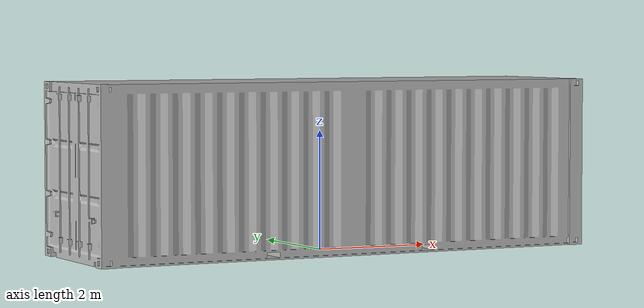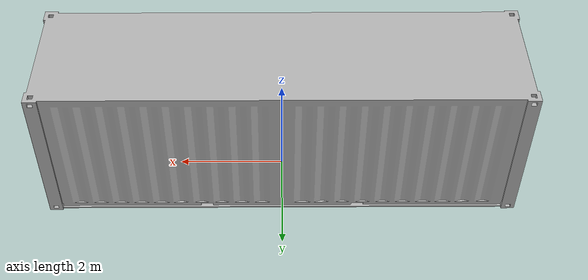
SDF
<sdf version="1.7">
  <model name="shipping_container">
    <static>true</static>
    <link name="shipping_container_link">
      <collision name="shipping_container_collision">
        <geometry>
          <mesh>
            <uri>model://shipping_container/shipping_container.dae</uri>
            <scale>1 1 1</scale>
          </mesh>
        </geometry>
      </collision>
      <visual name="shipping_container_visual">
        <geometry>
          <mesh>
            <uri>model://shipping_container/shipping_container.dae</uri>
            <scale>1 1 1</scale>
          </mesh>
        </geometry>
      </visual>
    </link>
  </model>
</sdf>
